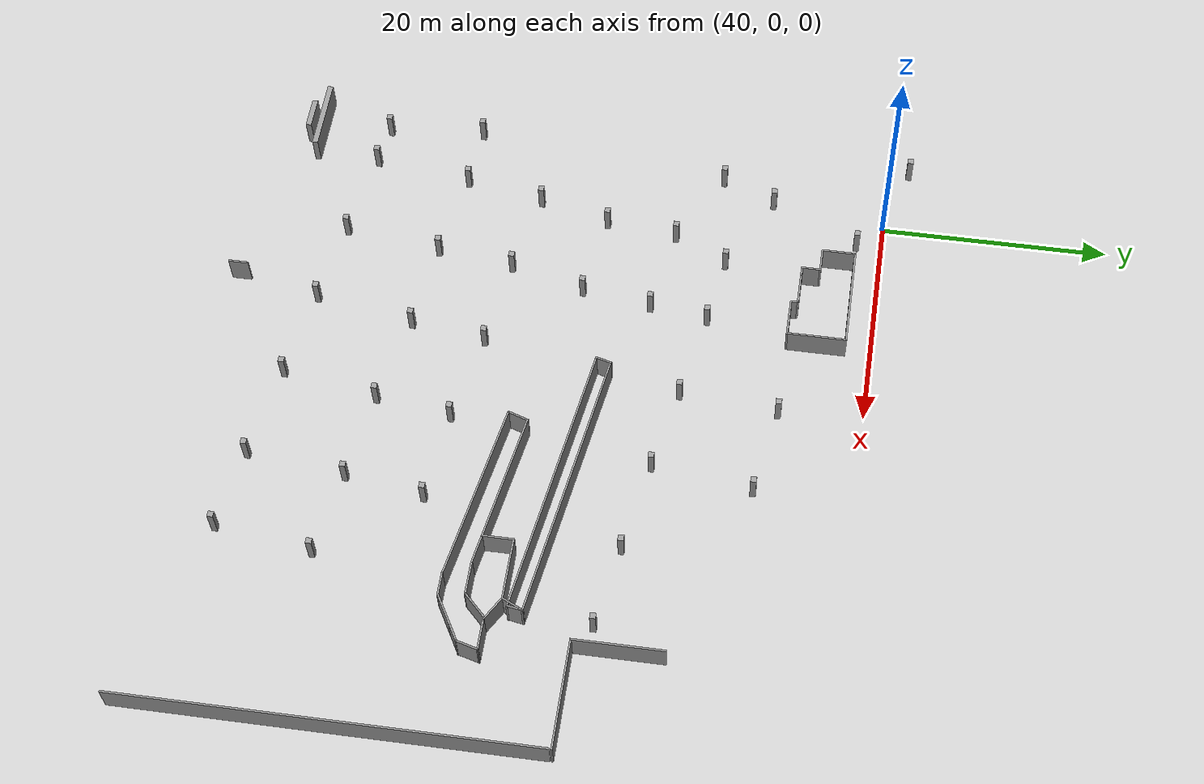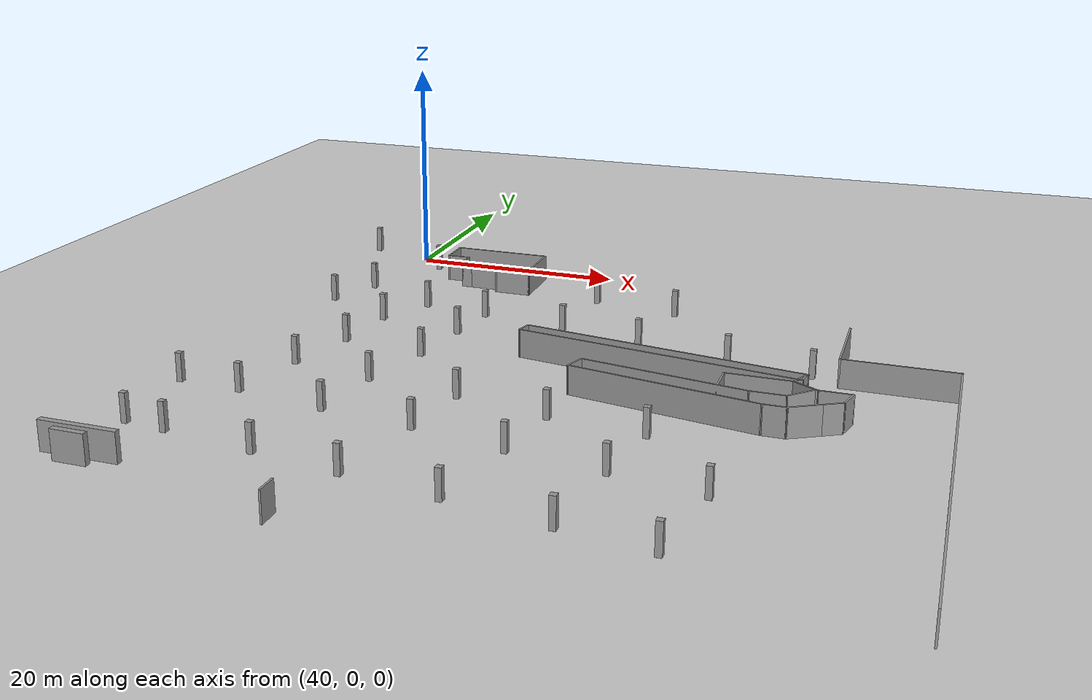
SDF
<sdf version="1.6">
 <world name="default">
  <model name="ground_plane">
   <static>1</static>
   <link name="link">
    <collision name="collision">
     <geometry><plane><normal>0 0 1</normal><size>100 100</size></plane></geometry>
     <surface>
      <contact><collide_bitmask>65535</collide_bitmask></contact>
      <friction><ode><mu>100</mu><mu2>50</mu2></ode></friction>
     </surface>
    </collision>
    <visual name="visual">
     <cast_shadows>0</cast_shadows>
     <geometry><plane><normal>0 0 1</normal><size>100 100</size></plane></geometry>
     <material>
      <script><uri>file://media/materials/scripts/gazebo.material</uri><name>Gazebo/Grey</name></script>
     </material>
    </visual>
   </link>
  </model>
  <model name="parking_area_big_2">
   <pose>0.028574 -0.058085 0 0 -0 0</pose>
   <link name="Wall_282">
    <collision name="Wall_282_Collision">
     <geometry><box><size>0.51 0.5 2.5</size></box></geometry>
     <pose>0 0 1.25 0 -0 0</pose>
    </collision>
    <visual name="Wall_282_Visual">
     <pose>0 0 1.25 0 -0 0</pose>
     <geometry><box><size>0.51 0.5 2.5</size></box></geometry>
     <material>
      <script><uri>file://media/materials/scripts/gazebo.material</uri><name>Gazebo/Grey</name></script>
      <ambient>1 1 1 1</ambient>
     </material>
     <meta><layer>0</layer></meta>
    </visual>
    <pose>42.8538 -24.4996 0 0 -0 0</pose>
   </link>
   <link name="Wall_284">
    <collision name="Wall_284_Collision">
     <geometry><box><size>0.51 0.5 2.5</size></box></geometry>
     <pose>0 0 1.25 0 -0 0</pose>
    </collision>
    <visual name="Wall_284_Visual">
     <pose>0 0 1.25 0 -0 0</pose>
     <geometry><box><size>0.51 0.5 2.5</size></box></geometry>
     <material>
      <script><uri>file://media/materials/scripts/gazebo.material</uri><name>Gazebo/Grey</name></script>
      <ambient>1 1 1 1</ambient>
     </material>
     <meta><layer>0</layer></meta>
    </visual>
    <pose>50.4723 -25.585 0 0 -0 0</pose>
   </link>
   <link name="Wall_286">
    <collision name="Wall_286_Collision">
     <geometry><box><size>0.51 0.5 2.5</size></box></geometry>
     <pose>0 0 1.25 0 -0 0</pose>
    </collision>
    <visual name="Wall_286_Visual">
     <pose>0 0 1.25 0 -0 0</pose>
     <geometry><box><size>0.51 0.5 2.5</size></box></geometry>
     <material>
      <script><uri>file://media/materials/scripts/gazebo.material</uri><name>Gazebo/Grey</name></script>
      <ambient>1 1 1 1</ambient>
     </material>
     <meta><layer>0</layer></meta>
    </visual>
    <pose>51.3512 -19.4611 0 0 -0 0</pose>
   </link>
   <link name="Wall_289">
    <collision name="Wall_289_Collision">
     <geometry><box><size>14.1352 0.15 2.5</size></box></geometry>
     <pose>0 0 1.25 0 -0 0</pose>
    </collision>
    <visual name="Wall_289_Visual">
     <pose>0 0 1.25 0 -0 0</pose>
     <geometry><box><size>14.1352 0.15 2.5</size></box></geometry>
     <material>
      <script><uri>file://media/materials/scripts/gazebo.material</uri><name>Gazebo/Grey</name></script>
      <ambient>1 1 1 1</ambient>
     </material>
     <meta><layer>0</layer></meta>
    </visual>
    <pose>72.3605 -29.0324 0 0 -0 -0.159836</pose>
   </link>
   <link name="Wall_290">
    <collision name="Wall_290_Collision">
     <geometry><box><size>3 0.15 2.5</size></box></geometry>
     <pose>0 0 1.25 0 -0 0</pose>
    </collision>
    <visual name="Wall_290_Visual">
     <pose>0 0 1.25 0 -0 0</pose>
     <geometry><box><size>3 0.15 2.5</size></box></geometry>
     <material>
      <script><uri>file://media/materials/scripts/gazebo.material</uri><name>Gazebo/Grey</name></script>
      <ambient>1 1 1 1</ambient>
     </material>
     <meta><layer>0</layer></meta>
    </visual>
    <pose>80.689 -30.1454 0 0 -0 0</pose>
   </link>
   <link name="Wall_291">
    <collision name="Wall_291_Collision">
     <geometry><box><size>2.75 0.15 2.5</size></box></geometry>
     <pose>0 0 1.25 0 -0 0</pose>
    </collision>
    <visual name="Wall_291_Visual">
     <pose>0 0 1.25 0 -0 0</pose>
     <geometry><box><size>2.75 0.15 2.5</size></box></geometry>
     <material>
      <script><uri>file://media/materials/scripts/gazebo.material</uri><name>Gazebo/Grey</name></script>
      <ambient>1 1 1 1</ambient>
     </material>
     <meta><layer>0</layer></meta>
    </visual>
    <pose>83.0333 -29.2261 0 0 -0 0.785398</pose>
   </link>
   <link name="Wall_292">
    <collision name="Wall_292_Collision">
     <geometry><box><size>3 0.15 2.5</size></box></geometry>
     <pose>0 0 1.25 0 -0 0</pose>
    </collision>
    <visual name="Wall_292_Visual">
     <pose>0 0 1.25 0 -0 0</pose>
     <geometry><box><size>3 0.15 2.5</size></box></geometry>
     <material>
      <script><uri>file://media/materials/scripts/gazebo.material</uri><name>Gazebo/Grey</name></script>
      <ambient>1 1 1 1</ambient>
     </material>
     <meta><layer>0</layer></meta>
    </visual>
    <pose>85.3775 -28.3069 0 0 -0 0</pose>
   </link>
   <link name="Wall_293">
    <collision name="Wall_293_Collision">
     <geometry><box><size>2 0.15 2.5</size></box></geometry>
     <pose>0 0 1.25 0 -0 0</pose>
    </collision>
    <visual name="Wall_293_Visual">
     <pose>0 0 1.25 0 -0 0</pose>
     <geometry><box><size>2 0.15 2.5</size></box></geometry>
     <material>
      <script><uri>file://media/materials/scripts/gazebo.material</uri><name>Gazebo/Grey</name></script>
      <ambient>1 1 1 1</ambient>
     </material>
     <meta><layer>0</layer></meta>
    </visual>
    <pose>86.5631 -29.2004 0 0 -0 -1.8326</pose>
   </link>
   <link name="Wall_294">
    <collision name="Wall_294_Collision">
     <geometry><box><size>1.75 0.15 2.5</size></box></geometry>
     <pose>0 0 1.25 0 -0 0</pose>
    </collision>
    <visual name="Wall_294_Visual">
     <pose>0 0 1.25 0 -0 0</pose>
     <geometry><box><size>1.75 0.15 2.5</size></box></geometry>
     <material>
      <script><uri>file://media/materials/scripts/gazebo.material</uri><name>Gazebo/Grey</name></script>
      <ambient>1 1 1 1</ambient>
     </material>
     <meta><layer>0</layer></meta>
    </visual>
    <pose>85.6309 -30.4938 0 0 -0 -2.61799</pose>
   </link>
   <link name="Wall_295">
    <collision name="Wall_295_Collision">
     <geometry><box><size>3 0.15 2.5</size></box></geometry>
     <pose>0 0 1.25 0 -0 0</pose>
    </collision>
    <visual name="Wall_295_Visual">
     <pose>0 0 1.25 0 -0 0</pose>
     <geometry><box><size>3 0.15 2.5</size></box></geometry>
     <material>
      <script><uri>file://media/materials/scripts/gazebo.material</uri><name>Gazebo/Grey</name></script>
      <ambient>1 1 1 1</ambient>
     </material>
     <meta><layer>0</layer></meta>
    </visual>
    <pose>83.7039 -31.6063 0 0 -0 -2.61799</pose>
   </link>
   <link name="Wall_296">
    <collision name="Wall_296_Collision">
     <geometry><box><size>2 0.15 2.5</size></box></geometry>
     <pose>0 0 1.25 0 -0 0</pose>
    </collision>
    <visual name="Wall_296_Visual">
     <pose>0 0 1.25 0 -0 0</pose>
     <geometry><box><size>2 0.15 2.5</size></box></geometry>
     <material>
      <script><uri>file://media/materials/scripts/gazebo.material</uri><name>Gazebo/Grey</name></script>
      <ambient>1 1 1 1</ambient>
     </material>
     <meta><layer>0</layer></meta>
    </visual>
    <pose>81.5449 -32.3188 0 0 -0 3.14159</pose>
   </link>
   <link name="Wall_297">
    <collision name="Wall_297_Collision">
     <geometry><box><size>16.1236 0.15 2.5</size></box></geometry>
     <pose>0 0 1.25 0 -0 0</pose>
    </collision>
    <visual name="Wall_297_Visual">
     <pose>0 0 1.25 0 -0 0</pose>
     <geometry><box><size>16.1236 0.15 2.5</size></box></geometry>
     <material>
      <script><uri>file://media/materials/scripts/gazebo.material</uri><name>Gazebo/Grey</name></script>
      <ambient>1 1 1 1</ambient>
     </material>
     <meta><layer>0</layer></meta>
    </visual>
    <pose>72.7462 -30.9794 0 0 -0 2.9731</pose>
   </link>
   <link name="Wall_298">
    <collision name="Wall_298_Collision">
     <geometry><box><size>1.96713 0.15 2.5</size></box></geometry>
     <pose>0 0 1.25 0 -0 0</pose>
    </collision>
    <visual name="Wall_298_Visual">
     <pose>0 0 1.25 0 -0 0</pose>
     <geometry><box><size>1.96713 0.15 2.5</size></box></geometry>
     <material>
      <script><uri>file://media/materials/scripts/gazebo.material</uri><name>Gazebo/Grey</name></script>
      <ambient>1 1 1 1</ambient>
     </material>
     <meta><layer>0</layer></meta>
    </visual>
    <pose>65.1648 -28.7798 0 0 -0 1.2433</pose>
   </link>
   <link name="Wall_300">
    <collision name="Wall_300_Collision">
     <geometry><box><size>5.5 0.15 2.5</size></box></geometry>
     <pose>0 0 1.25 0 -0 0</pose>
    </collision>
    <visual name="Wall_300_Visual">
     <pose>0 0 1.25 0 -0 0</pose>
     <geometry><box><size>5.5 0.15 2.5</size></box></geometry>
     <material>
      <script><uri>file://media/materials/scripts/gazebo.material</uri><name>Gazebo/Grey</name></script>
      <ambient>1 1 1 1</ambient>
     </material>
     <meta><layer>0</layer></meta>
    </visual>
    <pose>79.4586 -27.1389 0 0 -0 0</pose>
   </link>
   <link name="Wall_301">
    <collision name="Wall_301_Collision">
     <geometry><box><size>2.5 0.15 2.5</size></box></geometry>
     <pose>0 0 1.25 0 -0 0</pose>
    </collision>
    <visual name="Wall_301_Visual">
     <pose>0 0 1.25 0 -0 0</pose>
     <geometry><box><size>2.5 0.15 2.5</size></box></geometry>
     <material>
      <script><uri>file://media/materials/scripts/gazebo.material</uri><name>Gazebo/Grey</name></script>
      <ambient>1 1 1 1</ambient>
     </material>
     <meta><layer>0</layer></meta>
    </visual>
    <pose>83.1512 -27.7264 0 0 -0 -0.523599</pose>
   </link>
   <link name="Wall_303">
    <collision name="Wall_303_Collision">
     <geometry><box><size>2.75 0.15 2.5</size></box></geometry>
     <pose>0 0 1.25 0 -0 0</pose>
    </collision>
    <visual name="Wall_303_Visual">
     <pose>0 0 1.25 0 -0 0</pose>
     <geometry><box><size>2.75 0.15 2.5</size></box></geometry>
     <material>
      <script><uri>file://media/materials/scripts/gazebo.material</uri><name>Gazebo/Grey</name></script>
      <ambient>1 1 1 1</ambient>
     </material>
     <meta><layer>0</layer></meta>
    </visual>
    <pose>76.7836 -28.4389 0 0 -0 -1.5708</pose>
   </link>
   <link name="Wall_305">
    <collision name="Wall_305_Collision">
     <geometry><box><size>0.51 0.5 2.5</size></box></geometry>
     <pose>0 0 1.25 0 -0 0</pose>
    </collision>
    <visual name="Wall_305_Visual">
     <pose>0 0 1.25 0 -0 0</pose>
     <geometry><box><size>0.51 0.5 2.5</size></box></geometry>
     <material>
      <script><uri>file://media/materials/scripts/gazebo.material</uri><name>Gazebo/Grey</name></script>
      <ambient>1 1 1 1</ambient>
     </material>
     <meta><layer>0</layer></meta>
    </visual>
    <pose>64.8191 -34.7412 0 0 -0 0</pose>
   </link>
   <link name="Wall_307">
    <collision name="Wall_307_Collision">
     <geometry><box><size>0.51 0.5 2.5</size></box></geometry>
     <pose>0 0 1.25 0 -0 0</pose>
    </collision>
    <visual name="Wall_307_Visual">
     <pose>0 0 1.25 0 -0 0</pose>
     <geometry><box><size>0.51 0.5 2.5</size></box></geometry>
     <material>
      <script><uri>file://media/materials/scripts/gazebo.material</uri><name>Gazebo/Grey</name></script>
      <ambient>1 1 1 1</ambient>
     </material>
     <meta><layer>0</layer></meta>
    </visual>
    <pose>63.8385 -41.3857 0 0 -0 0</pose>
   </link>
   <link name="Wall_309">
    <collision name="Wall_309_Collision">
     <geometry><box><size>0.51 0.5 2.5</size></box></geometry>
     <pose>0 0 1.25 0 -0 0</pose>
    </collision>
    <visual name="Wall_309_Visual">
     <pose>0 0 1.25 0 -0 0</pose>
     <geometry><box><size>0.51 0.5 2.5</size></box></geometry>
     <material>
      <script><uri>file://media/materials/scripts/gazebo.material</uri><name>Gazebo/Grey</name></script>
      <ambient>1 1 1 1</ambient>
     </material>
     <meta><layer>0</layer></meta>
    </visual>
    <pose>71.7112 -42.4191 0 0 -0 0</pose>
   </link>
   <link name="Wall_311">
    <collision name="Wall_311_Collision">
     <geometry><box><size>0.51 0.5 2.5</size></box></geometry>
     <pose>0 0 1.25 0 -0 0</pose>
    </collision>
    <visual name="Wall_311_Visual">
     <pose>0 0 1.25 0 -0 0</pose>
     <geometry><box><size>0.51 0.5 2.5</size></box></geometry>
     <material>
      <script><uri>file://media/materials/scripts/gazebo.material</uri><name>Gazebo/Grey</name></script>
      <ambient>1 1 1 1</ambient>
     </material>
     <meta><layer>0</layer></meta>
    </visual>
    <pose>79.1368 -43.6035 0 0 -0 -1.5708</pose>
   </link>
   <link name="Wall_313">
    <collision name="Wall_313_Collision">
     <geometry><box><size>0.51 0.5 2.5</size></box></geometry>
     <pose>0 0 1.25 0 -0 0</pose>
    </collision>
    <visual name="Wall_313_Visual">
     <pose>0 0 1.25 0 -0 0</pose>
     <geometry><box><size>0.51 0.5 2.5</size></box></geometry>
     <material>
      <script><uri>file://media/materials/scripts/gazebo.material</uri><name>Gazebo/Grey</name></script>
      <ambient>1 1 1 1</ambient>
     </material>
     <meta><layer>0</layer></meta>
    </visual>
    <pose>77.8144 -52.1023 0 0 -0 0</pose>
   </link>
   <link name="Wall_315">
    <collision name="Wall_315_Collision">
     <geometry><box><size>0.51 0.5 2.5</size></box></geometry>
     <pose>0 0 1.25 0 -0 0</pose>
    </collision>
    <visual name="Wall_315_Visual">
     <pose>0 0 1.25 0 -0 0</pose>
     <geometry><box><size>0.51 0.5 2.5</size></box></geometry>
     <material>
      <script><uri>file://media/materials/scripts/gazebo.material</uri><name>Gazebo/Grey</name></script>
      <ambient>1 1 1 1</ambient>
     </material>
     <meta><layer>0</layer></meta>
    </visual>
    <pose>70.6561 -51.0772 0 0 -0 0</pose>
   </link>
   <link name="Wall_317">
    <collision name="Wall_317_Collision">
     <geometry><box><size>0.51 0.5 2.5</size></box></geometry>
     <pose>0 0 1.25 0 -0 0</pose>
    </collision>
    <visual name="Wall_317_Visual">
     <pose>0 0 1.25 0 -0 0</pose>
     <geometry><box><size>0.51 0.5 2.5</size></box></geometry>
     <material>
      <script><uri>file://media/materials/scripts/gazebo.material</uri><name>Gazebo/Grey</name></script>
      <ambient>1 1 1 1</ambient>
     </material>
     <meta><layer>0</layer></meta>
    </visual>
    <pose>62.2986 -49.8022 0 0 -0 -1.5708</pose>
   </link>
   <link name="Wall_319">
    <collision name="Wall_319_Collision">
     <geometry><box><size>0.51 0.5 2.5</size></box></geometry>
     <pose>0 0 1.25 0 -0 0</pose>
    </collision>
    <visual name="Wall_319_Visual">
     <pose>0 0 1.25 0 -0 0</pose>
     <geometry><box><size>0.51 0.5 2.5</size></box></geometry>
     <material>
      <script><uri>file://media/materials/scripts/gazebo.material</uri><name>Gazebo/Grey</name></script>
      <ambient>1 1 1 1</ambient>
     </material>
     <meta><layer>0</layer></meta>
    </visual>
    <pose>56.8275 -33.223 0 0 -0 0</pose>
   </link>
   <link name="Wall_321">
    <collision name="Wall_321_Collision">
     <geometry><box><size>0.51 0.5 2.5</size></box></geometry>
     <pose>0 0 1.25 0 -0 0</pose>
    </collision>
    <visual name="Wall_321_Visual">
     <pose>0 0 1.25 0 -0 0</pose>
     <geometry><box><size>0.51 0.5 2.5</size></box></geometry>
     <material>
      <script><uri>file://media/materials/scripts/gazebo.material</uri><name>Gazebo/Grey</name></script>
      <ambient>1 1 1 1</ambient>
     </material>
     <meta><layer>0</layer></meta>
    </visual>
    <pose>55.861 -39.851 0 0 -0 0</pose>
   </link>
   <link name="Wall_337">
    <collision name="Wall_337_Collision">
     <geometry><box><size>0.51 0.5 2.5</size></box></geometry>
     <pose>0 0 1.25 0 -0 0</pose>
    </collision>
    <visual name="Wall_337_Visual">
     <pose>0 0 1.25 0 -0 0</pose>
     <geometry><box><size>0.51 0.5 2.5</size></box></geometry>
     <material>
      <script><uri>file://media/materials/scripts/gazebo.material</uri><name>Gazebo/Grey</name></script>
      <ambient>1 1 1 1</ambient>
     </material>
     <meta><layer>0</layer></meta>
    </visual>
    <pose>48.7352 -32.1848 0 0 -0 0</pose>
   </link>
   <link name="Wall_4">
    <collision name="Wall_4_Collision">
     <geometry><box><size>7.75 0.15 2.5</size></box></geometry>
     <pose>0 0 1.25 0 -0 0</pose>
    </collision>
    <visual name="Wall_4_Visual">
     <pose>0 0 1.25 0 -0 0</pose>
     <geometry><box><size>7.75 0.15 2.5</size></box></geometry>
     <material>
      <script><uri>file://media/materials/scripts/gazebo.material</uri><name>Gazebo/Grey</name></script>
      <ambient>1 1 1 1</ambient>
     </material>
     <meta><layer>0</layer></meta>
    </visual>
    <pose>84.9591 -17.366 0 0 -0 -1.5708</pose>
   </link>
   <link name="Wall_45">
    <collision name="Wall_45_Collision">
     <geometry><box><size>0.51 0.5 2.5</size></box></geometry>
     <pose>0 0 1.25 0 -0 0</pose>
    </collision>
    <visual name="Wall_45_Visual">
     <pose>0 0 1.25 0 -0 0</pose>
     <geometry><box><size>0.51 0.5 2.5</size></box></geometry>
     <material>
      <script><uri>file://media/materials/scripts/gazebo.material</uri><name>Gazebo/Grey</name></script>
      <ambient>1 1 1 1</ambient>
     </material>
     <meta><layer>0</layer></meta>
    </visual>
    <pose>33.7273 1.95605 0 0 -0 3.14159</pose>
   </link>
   <link name="Wall_459">
    <collision name="Wall_459_Collision">
     <geometry><box><size>0.51 0.5 2.5</size></box></geometry>
     <pose>0 0 1.25 0 -0 0</pose>
    </collision>
    <visual name="Wall_459_Visual">
     <pose>0 0 1.25 0 -0 0</pose>
     <geometry><box><size>0.51 0.5 2.5</size></box></geometry>
     <material>
      <script><uri>file://media/materials/scripts/gazebo.material</uri><name>Gazebo/Grey</name></script>
      <ambient>1 1 1 1</ambient>
     </material>
     <meta><layer>0</layer></meta>
    </visual>
    <pose>34.3056 -37.3654 0 0 -0 0</pose>
   </link>
   <link name="Wall_461">
    <collision name="Wall_461_Collision">
     <geometry><box><size>0.51 0.5 2.5</size></box></geometry>
     <pose>0 0 1.25 0 -0 0</pose>
    </collision>
    <visual name="Wall_461_Visual">
     <pose>0 0 1.25 0 -0 0</pose>
     <geometry><box><size>0.51 0.5 2.5</size></box></geometry>
     <material>
      <script><uri>file://media/materials/scripts/gazebo.material</uri><name>Gazebo/Grey</name></script>
      <ambient>1 1 1 1</ambient>
     </material>
     <meta><layer>0</layer></meta>
    </visual>
    <pose>41.249 -30.7689 0 0 -0 0</pose>
   </link>
   <link name="Wall_463">
    <collision name="Wall_463_Collision">
     <geometry><box><size>0.51 0.5 2.5</size></box></geometry>
     <pose>0 0 1.25 0 -0 0</pose>
    </collision>
    <visual name="Wall_463_Visual">
     <pose>0 0 1.25 0 -0 0</pose>
     <geometry><box><size>0.51 0.5 2.5</size></box></geometry>
     <material>
      <script><uri>file://media/materials/scripts/gazebo.material</uri><name>Gazebo/Grey</name></script>
      <ambient>1 1 1 1</ambient>
     </material>
     <meta><layer>0</layer></meta>
    </visual>
    <pose>39.9353 -37.7139 0 0 -0 0</pose>
   </link>
   <link name="Wall_465">
    <collision name="Wall_465_Collision">
     <geometry><box><size>0.51 0.5 2.5</size></box></geometry>
     <pose>0 0 1.25 0 -0 0</pose>
    </collision>
    <visual name="Wall_465_Visual">
     <pose>0 0 1.25 0 -0 0</pose>
     <geometry><box><size>0.51 0.5 2.5</size></box></geometry>
     <material>
      <script><uri>file://media/materials/scripts/gazebo.material</uri><name>Gazebo/Grey</name></script>
      <ambient>1 1 1 1</ambient>
     </material>
     <meta><layer>0</layer></meta>
    </visual>
    <pose>47.8889 -38.9524 0 0 -0 0</pose>
   </link>
   <link name="Wall_467">
    <collision name="Wall_467_Collision">
     <geometry><box><size>0.51 0.5 2.5</size></box></geometry>
     <pose>0 0 1.25 0 -0 0</pose>
    </collision>
    <visual name="Wall_467_Visual">
     <pose>0 0 1.25 0 -0 0</pose>
     <geometry><box><size>0.51 0.5 2.5</size></box></geometry>
     <material>
      <script><uri>file://media/materials/scripts/gazebo.material</uri><name>Gazebo/Grey</name></script>
      <ambient>1 1 1 1</ambient>
     </material>
     <meta><layer>0</layer></meta>
    </visual>
    <pose>72.8016 -35.5121 0 0 -0 0</pose>
   </link>
   <link name="Wall_469">
    <collision name="Wall_469_Collision">
     <geometry><box><size>0.51 0.5 2.5</size></box></geometry>
     <pose>0 0 1.25 0 -0 0</pose>
    </collision>
    <visual name="Wall_469_Visual">
     <pose>0 0 1.25 0 -0 0</pose>
     <geometry><box><size>0.51 0.5 2.5</size></box></geometry>
     <material>
      <script><uri>file://media/materials/scripts/gazebo.material</uri><name>Gazebo/Grey</name></script>
      <ambient>1 1 1 1</ambient>
     </material>
     <meta><layer>0</layer></meta>
    </visual>
    <pose>54.2297 -48.6141 0 0 -0 0</pose>
   </link>
   <link name="Wall_47">
    <collision name="Wall_47_Collision">
     <geometry><box><size>0.51 0.5 2.5</size></box></geometry>
     <pose>0 0 1.25 0 -0 0</pose>
    </collision>
    <visual name="Wall_47_Visual">
     <pose>0 0 1.25 0 -0 0</pose>
     <geometry><box><size>0.51 0.5 2.5</size></box></geometry>
     <material>
      <script><uri>file://media/materials/scripts/gazebo.material</uri><name>Gazebo/Grey</name></script>
      <ambient>1 1 1 1</ambient>
     </material>
     <meta><layer>0</layer></meta>
    </visual>
    <pose>42.3753 -2.13027 0 0 -0 0</pose>
   </link>
   <link name="Wall_471">
    <collision name="Wall_471_Collision">
     <geometry><box><size>0.51 0.5 2.5</size></box></geometry>
     <pose>0 0 1.25 0 -0 0</pose>
    </collision>
    <visual name="Wall_471_Visual">
     <pose>0 0 1.25 0 -0 0</pose>
     <geometry><box><size>0.51 0.5 2.5</size></box></geometry>
     <material>
      <script><uri>file://media/materials/scripts/gazebo.material</uri><name>Gazebo/Grey</name></script>
      <ambient>1 1 1 1</ambient>
     </material>
     <meta><layer>0</layer></meta>
    </visual>
    <pose>46.7106 -47.5138 0 0 -0 0</pose>
   </link>
   <link name="Wall_474">
    <collision name="Wall_474_Collision">
     <geometry><box><size>6.6 0.5 2.5</size></box></geometry>
     <pose>0 0 1.25 0 -0 0</pose>
    </collision>
    <visual name="Wall_474_Visual">
     <pose>0 0 1.25 0 -0 0</pose>
     <geometry><box><size>6.6 0.5 2.5</size></box></geometry>
     <material>
      <script><uri>file://media/materials/scripts/gazebo.material</uri><name>Gazebo/Grey</name></script>
      <ambient>1 1 1 1</ambient>
     </material>
     <meta><layer>0</layer></meta>
    </visual>
    <pose>35.5254 -52.0901 0 0 -0 0</pose>
   </link>
   <link name="Wall_476">
    <collision name="Wall_476_Collision">
     <geometry><box><size>2.85 0.5 2.5</size></box></geometry>
     <pose>0 0 1.25 0 -0 0</pose>
    </collision>
    <visual name="Wall_476_Visual">
     <pose>0 0 1.25 0 -0 0</pose>
     <geometry><box><size>2.85 0.5 2.5</size></box></geometry>
     <material>
      <script><uri>file://media/materials/scripts/gazebo.material</uri><name>Gazebo/Grey</name></script>
      <ambient>1 1 1 1</ambient>
     </material>
     <meta><layer>0</layer></meta>
    </visual>
    <pose>35.4973 -53.1201 0 0 -0 0</pose>
   </link>
   <link name="Wall_478">
    <collision name="Wall_478_Collision">
     <geometry><box><size>0.51 0.5 2.5</size></box></geometry>
     <pose>0 0 1.25 0 -0 0</pose>
    </collision>
    <visual name="Wall_478_Visual">
     <pose>0 0 1.25 0 -0 0</pose>
     <geometry><box><size>0.51 0.5 2.5</size></box></geometry>
     <material>
      <script><uri>file://media/materials/scripts/gazebo.material</uri><name>Gazebo/Grey</name></script>
      <ambient>1 1 1 1</ambient>
     </material>
     <meta><layer>0</layer></meta>
    </visual>
    <pose>38.6813 -46.3683 0 0 -0 0</pose>
   </link>
   <link name="Wall_480">
    <collision name="Wall_480_Collision">
     <geometry><box><size>0.51 0.5 2.5</size></box></geometry>
     <pose>0 0 1.25 0 -0 0</pose>
    </collision>
    <visual name="Wall_480_Visual">
     <pose>0 0 1.25 0 -0 0</pose>
     <geometry><box><size>0.51 0.5 2.5</size></box></geometry>
     <material>
      <script><uri>file://media/materials/scripts/gazebo.material</uri><name>Gazebo/Grey</name></script>
      <ambient>1 1 1 1</ambient>
     </material>
     <meta><layer>0</layer></meta>
    </visual>
    <pose>34.9975 -45.9138 0 0 -0 0</pose>
   </link>
   <link name="Wall_49">
    <collision name="Wall_49_Collision">
     <geometry><box><size>9.25 0.15 2.5</size></box></geometry>
     <pose>0 0 1.25 0 -0 0</pose>
    </collision>
    <visual name="Wall_49_Visual">
     <pose>0 0 1.25 0 -0 0</pose>
     <geometry><box><size>9.25 0.15 2.5</size></box></geometry>
     <material>
      <script><uri>file://media/materials/scripts/gazebo.material</uri><name>Gazebo/Grey</name></script>
      <ambient>1 1 1 1</ambient>
     </material>
     <meta><layer>0</layer></meta>
    </visual>
    <pose>49.2713 -2.14104 0 0 -0 0</pose>
   </link>
   <link name="Wall_5">
    <collision name="Wall_5_Collision">
     <geometry><box><size>9.5 0.15 2.5</size></box></geometry>
     <pose>0 0 1.25 0 -0 0</pose>
    </collision>
    <visual name="Wall_5_Visual">
     <pose>0 0 1.25 0 -0 0</pose>
     <geometry><box><size>9.5 0.15 2.5</size></box></geometry>
     <material>
      <script><uri>file://media/materials/scripts/gazebo.material</uri><name>Gazebo/Grey</name></script>
      <ambient>1 1 1 1</ambient>
     </material>
     <meta><layer>0</layer></meta>
    </visual>
    <pose>89.6341 -21.166 0 0 -0 0</pose>
   </link>
   <link name="Wall_50">
    <collision name="Wall_50_Collision">
     <geometry><box><size>5.25 0.15 2.5</size></box></geometry>
     <pose>0 0 1.25 0 -0 0</pose>
    </collision>
    <visual name="Wall_50_Visual">
     <pose>0 0 1.25 0 -0 0</pose>
     <geometry><box><size>5.25 0.15 2.5</size></box></geometry>
     <material>
      <script><uri>file://media/materials/scripts/gazebo.material</uri><name>Gazebo/Grey</name></script>
      <ambient>1 1 1 1</ambient>
     </material>
     <meta><layer>0</layer></meta>
    </visual>
    <pose>53.8213 -4.69104 0 0 -0 -1.5708</pose>
   </link>
   <link name="Wall_51">
    <collision name="Wall_51_Collision">
     <geometry><box><size>3.5 0.15 2.5</size></box></geometry>
     <pose>0 0 1.25 0 -0 0</pose>
    </collision>
    <visual name="Wall_51_Visual">
     <pose>0 0 1.25 0 -0 0</pose>
     <geometry><box><size>3.5 0.15 2.5</size></box></geometry>
     <material>
      <script><uri>file://media/materials/scripts/gazebo.material</uri><name>Gazebo/Grey</name></script>
      <ambient>1 1 1 1</ambient>
     </material>
     <meta><layer>0</layer></meta>
    </visual>
    <pose>52.1463 -7.24104 0 0 -0 3.14159</pose>
   </link>
   <link name="Wall_52">
    <collision name="Wall_52_Collision">
     <geometry><box><size>0.75 0.15 2.5</size></box></geometry>
     <pose>0 0 1.25 0 -0 0</pose>
    </collision>
    <visual name="Wall_52_Visual">
     <pose>0 0 1.25 0 -0 0</pose>
     <geometry><box><size>0.75 0.15 2.5</size></box></geometry>
     <material>
      <script><uri>file://media/materials/scripts/gazebo.material</uri><name>Gazebo/Grey</name></script>
      <ambient>1 1 1 1</ambient>
     </material>
     <meta><layer>0</layer></meta>
    </visual>
    <pose>50.4713 -6.94104 0 0 -0 1.5708</pose>
   </link>
   <link name="Wall_522">
    <collision name="Wall_522_Collision">
     <geometry><box><size>1.75 0.15 2.5</size></box></geometry>
     <pose>0 0 1.25 0 -0 0</pose>
    </collision>
    <visual name="Wall_522_Visual">
     <pose>0 0 1.25 0 -0 0</pose>
     <geometry><box><size>1.75 0.15 2.5</size></box></geometry>
     <material>
      <script><uri>file://media/materials/scripts/gazebo.material</uri><name>Gazebo/Grey</name></script>
      <ambient>1 1 1 1</ambient>
     </material>
     <meta><layer>0</layer></meta>
    </visual>
    <pose>52.8066 -55.8502 0 0 -0 -1.5708</pose>
   </link>
   <link name="Wall_524">
    <collision name="Wall_524_Collision">
     <geometry><box><size>24.4971 0.15 2.5</size></box></geometry>
     <pose>0 0 1.25 0 -0 0</pose>
    </collision>
    <visual name="Wall_524_Visual">
     <pose>0 0 1.25 0 -0 0</pose>
     <geometry><box><size>24.4971 0.15 2.5</size></box></geometry>
     <material>
      <script><uri>file://media/materials/scripts/gazebo.material</uri><name>Gazebo/Grey</name></script>
      <ambient>1 1 1 1</ambient>
     </material>
     <meta><layer>0</layer></meta>
    </visual>
    <pose>70.962 -23.6139 0 0 -0 -0.14524</pose>
   </link>
   <link name="Wall_525">
    <collision name="Wall_525_Collision">
     <geometry><box><size>1.37902 0.15 2.5</size></box></geometry>
     <pose>0 0 1.25 0 -0 0</pose>
    </collision>
    <visual name="Wall_525_Visual">
     <pose>0 0 1.25 0 -0 0</pose>
     <geometry><box><size>1.37902 0.15 2.5</size></box></geometry>
     <material>
      <script><uri>file://media/materials/scripts/gazebo.material</uri><name>Gazebo/Grey</name></script>
      <ambient>1 1 1 1</ambient>
     </material>
     <meta><layer>0</layer></meta>
    </visual>
    <pose>82.8651 -25.9812 0 0 -0 -1.74295</pose>
   </link>
   <link name="Wall_526">
    <collision name="Wall_526_Collision">
     <geometry><box><size>24.6616 0.15 2.5</size></box></geometry>
     <pose>0 0 1.25 0 -0 0</pose>
    </collision>
    <visual name="Wall_526_Visual">
     <pose>0 0 1.25 0 -0 0</pose>
     <geometry><box><size>24.6616 0.15 2.5</size></box></geometry>
     <material>
      <script><uri>file://media/materials/scripts/gazebo.material</uri><name>Gazebo/Grey</name></script>
      <ambient>1 1 1 1</ambient>
     </material>
     <meta><layer>0</layer></meta>
    </visual>
    <pose>70.6318 -24.8952 0 0 -0 2.99702</pose>
   </link>
   <link name="Wall_527">
    <collision name="Wall_527_Collision">
     <geometry><box><size>1.5 0.15 2.5</size></box></geometry>
     <pose>0 0 1.25 0 -0 0</pose>
    </collision>
    <visual name="Wall_527_Visual">
     <pose>0 0 1.25 0 -0 0</pose>
     <geometry><box><size>1.5 0.15 2.5</size></box></geometry>
     <material>
      <script><uri>file://media/materials/scripts/gazebo.material</uri><name>Gazebo/Grey</name></script>
      <ambient>1 1 1 1</ambient>
     </material>
     <meta><layer>0</layer></meta>
    </visual>
    <pose>58.6786 -22.4775 0 0 -0 1.309</pose>
   </link>
   <link name="Wall_529">
    <collision name="Wall_529_Collision">
     <geometry><box><size>2.10158 0.15 2.5</size></box></geometry>
     <pose>0 0 1.25 0 -0 0</pose>
    </collision>
    <visual name="Wall_529_Visual">
     <pose>0 0 1.25 0 -0 0</pose>
     <geometry><box><size>2.10158 0.15 2.5</size></box></geometry>
     <material>
      <script><uri>file://media/materials/scripts/gazebo.material</uri><name>Gazebo/Grey</name></script>
      <ambient>1 1 1 1</ambient>
     </material>
     <meta><layer>0</layer></meta>
    </visual>
    <pose>82.552 -26.2573 0 0 -0 -2.01389</pose>
   </link>
   <link name="Wall_53">
    <collision name="Wall_53_Collision">
     <geometry><box><size>3 0.15 2.5</size></box></geometry>
     <pose>0 0 1.25 0 -0 0</pose>
    </collision>
    <visual name="Wall_53_Visual">
     <pose>0 0 1.25 0 -0 0</pose>
     <geometry><box><size>3 0.15 2.5</size></box></geometry>
     <material>
      <script><uri>file://media/materials/scripts/gazebo.material</uri><name>Gazebo/Grey</name></script>
      <ambient>1 1 1 1</ambient>
     </material>
     <meta><layer>0</layer></meta>
    </visual>
    <pose>49.0463 -6.64103 0 0 -0 3.14159</pose>
   </link>
   <link name="Wall_54">
    <collision name="Wall_54_Collision">
     <geometry><box><size>1 0.15 2.5</size></box></geometry>
     <pose>0 0 1.25 0 -0 0</pose>
    </collision>
    <visual name="Wall_54_Visual">
     <pose>0 0 1.25 0 -0 0</pose>
     <geometry><box><size>1 0.15 2.5</size></box></geometry>
     <material>
      <script><uri>file://media/materials/scripts/gazebo.material</uri><name>Gazebo/Grey</name></script>
      <ambient>1 1 1 1</ambient>
     </material>
     <meta><layer>0</layer></meta>
    </visual>
    <pose>47.1963 -6.64103 0 0 -0 3.14159</pose>
   </link>
   <link name="Wall_55">
    <collision name="Wall_55_Collision">
     <geometry><box><size>1.75 0.15 2.5</size></box></geometry>
     <pose>0 0 1.25 0 -0 0</pose>
    </collision>
    <visual name="Wall_55_Visual">
     <pose>0 0 1.25 0 -0 0</pose>
     <geometry><box><size>1.75 0.15 2.5</size></box></geometry>
     <material>
      <script><uri>file://media/materials/scripts/gazebo.material</uri><name>Gazebo/Grey</name></script>
      <ambient>1 1 1 1</ambient>
     </material>
     <meta><layer>0</layer></meta>
    </visual>
    <pose>46.7713 -5.84103 0 0 -0 1.5708</pose>
   </link>
   <link name="Wall_56">
    <collision name="Wall_56_Collision">
     <geometry><box><size>2.25 0.15 2.5</size></box></geometry>
     <pose>0 0 1.25 0 -0 0</pose>
    </collision>
    <visual name="Wall_56_Visual">
     <pose>0 0 1.25 0 -0 0</pose>
     <geometry><box><size>2.25 0.15 2.5</size></box></geometry>
     <material>
      <script><uri>file://media/materials/scripts/gazebo.material</uri><name>Gazebo/Grey</name></script>
      <ambient>1 1 1 1</ambient>
     </material>
     <meta><layer>0</layer></meta>
    </visual>
    <pose>45.7213 -5.04103 0 0 -0 3.14159</pose>
   </link>
   <link name="Wall_57">
    <collision name="Wall_57_Collision">
     <geometry><box><size>3.03007 0.15 2.5</size></box></geometry>
     <pose>0 0 1.25 0 -0 0</pose>
    </collision>
    <visual name="Wall_57_Visual">
     <pose>0 0 1.25 0 -0 0</pose>
     <geometry><box><size>3.03007 0.15 2.5</size></box></geometry>
     <material>
      <script><uri>file://media/materials/scripts/gazebo.material</uri><name>Gazebo/Grey</name></script>
      <ambient>1 1 1 1</ambient>
     </material>
     <meta><layer>0</layer></meta>
    </visual>
    <pose>44.6713 -3.60103 0 0 -0 1.5708</pose>
   </link>
   <link name="Wall_6">
    <collision name="Wall_6_Collision">
     <geometry><box><size>35.52 0.15 2.5</size></box></geometry>
     <pose>0 0 1.25 0 -0 0</pose>
    </collision>
    <visual name="Wall_6_Visual">
     <pose>0 0 1.25 0 -0 0</pose>
     <geometry><box><size>35.52 0.15 2.5</size></box></geometry>
     <material>
      <script><uri>file://media/materials/scripts/gazebo.material</uri><name>Gazebo/Grey</name></script>
      <ambient>1 1 1 1</ambient>
     </material>
     <meta><layer>0</layer></meta>
    </visual>
    <pose>94.3091 -39.0999 0 0 -0 -1.5708</pose>
   </link>
   <link name="Wall_60">
    <collision name="Wall_60_Collision">
     <geometry><box><size>0.51 0.5 2.5</size></box></geometry>
     <pose>0 0 1.25 0 -0 0</pose>
    </collision>
    <visual name="Wall_60_Visual">
     <pose>0 0 1.25 0 -0 0</pose>
     <geometry><box><size>0.51 0.5 2.5</size></box></geometry>
     <material>
      <script><uri>file://media/materials/scripts/gazebo.material</uri><name>Gazebo/Grey</name></script>
      <ambient>1 1 1 1</ambient>
     </material>
     <meta><layer>0</layer></meta>
    </visual>
    <pose>60.7814 -7.19568 0 0 -0 3.14159</pose>
   </link>
   <link name="Wall_62">
    <collision name="Wall_62_Collision">
     <geometry><box><size>0.51 0.5 2.5</size></box></geometry>
     <pose>0 0 1.25 0 -0 0</pose>
    </collision>
    <visual name="Wall_62_Visual">
     <pose>0 0 1.25 0 -0 0</pose>
     <geometry><box><size>0.51 0.5 2.5</size></box></geometry>
     <material>
      <script><uri>file://media/materials/scripts/gazebo.material</uri><name>Gazebo/Grey</name></script>
      <ambient>1 1 1 1</ambient>
     </material>
     <meta><layer>0</layer></meta>
    </visual>
    <pose>68.6024 -8.45786 0 0 -0 0</pose>
   </link>
   <link name="Wall_64">
    <collision name="Wall_64_Collision">
     <geometry><box><size>0.51 0.5 2.5</size></box></geometry>
     <pose>0 0 1.25 0 -0 0</pose>
    </collision>
    <visual name="Wall_64_Visual">
     <pose>0 0 1.25 0 -0 0</pose>
     <geometry><box><size>0.51 0.5 2.5</size></box></geometry>
     <material>
      <script><uri>file://media/materials/scripts/gazebo.material</uri><name>Gazebo/Grey</name></script>
      <ambient>1 1 1 1</ambient>
     </material>
     <meta><layer>0</layer></meta>
    </visual>
    <pose>82.7033 -19.7321 0 0 -0 0</pose>
   </link>
   <link name="Wall_66">
    <collision name="Wall_66_Collision">
     <geometry><box><size>0.51 0.5 2.5</size></box></geometry>
     <pose>0 0 1.25 0 -0 0</pose>
    </collision>
    <visual name="Wall_66_Visual">
     <pose>0 0 1.25 0 -0 0</pose>
     <geometry><box><size>0.51 0.5 2.5</size></box></geometry>
     <material>
      <script><uri>file://media/materials/scripts/gazebo.material</uri><name>Gazebo/Grey</name></script>
      <ambient>1 1 1 1</ambient>
     </material>
     <meta><layer>0</layer></meta>
    </visual>
    <pose>75.4663 -18.5332 0 0 -0 0</pose>
   </link>
   <link name="Wall_68">
    <collision name="Wall_68_Collision">
     <geometry><box><size>0.51 0.5 2.5</size></box></geometry>
     <pose>0 0 1.25 0 -0 0</pose>
    </collision>
    <visual name="Wall_68_Visual">
     <pose>0 0 1.25 0 -0 0</pose>
     <geometry><box><size>0.51 0.5 2.5</size></box></geometry>
     <material>
      <script><uri>file://media/materials/scripts/gazebo.material</uri><name>Gazebo/Grey</name></script>
      <ambient>1 1 1 1</ambient>
     </material>
     <meta><layer>0</layer></meta>
    </visual>
    <pose>67.3938 -17.1757 0 0 -0 0</pose>
   </link>
   <link name="Wall_70">
    <collision name="Wall_70_Collision">
     <geometry><box><size>0.51 0.5 2.5</size></box></geometry>
     <pose>0 0 1.25 0 -0 0</pose>
    </collision>
    <visual name="Wall_70_Visual">
     <pose>0 0 1.25 0 -0 0</pose>
     <geometry><box><size>0.51 0.5 2.5</size></box></geometry>
     <material>
      <script><uri>file://media/materials/scripts/gazebo.material</uri><name>Gazebo/Grey</name></script>
      <ambient>1 1 1 1</ambient>
     </material>
     <meta><layer>0</layer></meta>
    </visual>
    <pose>60.0108 -15.7538 0 0 -0 0</pose>
   </link>
   <link name="Wall_72">
    <collision name="Wall_72_Collision">
     <geometry><box><size>0.51 0.5 2.5</size></box></geometry>
     <pose>0 0 1.25 0 -0 0</pose>
    </collision>
    <visual name="Wall_72_Visual">
     <pose>0 0 1.25 0 -0 0</pose>
     <geometry><box><size>0.51 0.5 2.5</size></box></geometry>
     <material>
      <script><uri>file://media/materials/scripts/gazebo.material</uri><name>Gazebo/Grey</name></script>
      <ambient>1 1 1 1</ambient>
     </material>
     <meta><layer>0</layer></meta>
    </visual>
    <pose>52.0768 -14.3672 0 0 -0 0</pose>
   </link>
   <link name="Wall_74">
    <collision name="Wall_74_Collision">
     <geometry><box><size>0.51 0.5 2.5</size></box></geometry>
     <pose>0 0 1.25 0 -0 0</pose>
    </collision>
    <visual name="Wall_74_Visual">
     <pose>0 0 1.25 0 -0 0</pose>
     <geometry><box><size>0.51 0.5 2.5</size></box></geometry>
     <material>
      <script><uri>file://media/materials/scripts/gazebo.material</uri><name>Gazebo/Grey</name></script>
      <ambient>1 1 1 1</ambient>
     </material>
     <meta><layer>0</layer></meta>
    </visual>
    <pose>45.9217 -13.4845 0 0 -0 0</pose>
   </link>
   <link name="Wall_76">
    <collision name="Wall_76_Collision">
     <geometry><box><size>0.51 0.5 2.5</size></box></geometry>
     <pose>0 0 1.25 0 -0 0</pose>
    </collision>
    <visual name="Wall_76_Visual">
     <pose>0 0 1.25 0 -0 0</pose>
     <geometry><box><size>0.51 0.5 2.5</size></box></geometry>
     <material>
      <script><uri>file://media/materials/scripts/gazebo.material</uri><name>Gazebo/Grey</name></script>
      <ambient>1 1 1 1</ambient>
     </material>
     <meta><layer>0</layer></meta>
    </visual>
    <pose>38.7144 -9.9207 0 0 -0 0</pose>
   </link>
   <link name="Wall_89">
    <collision name="Wall_89_Collision">
     <geometry><box><size>0.51 0.5 2.5</size></box></geometry>
     <pose>0 0 1.25 0 -0 0</pose>
    </collision>
    <visual name="Wall_89_Visual">
     <pose>0 0 1.25 0 -0 0</pose>
     <geometry><box><size>0.51 0.5 2.5</size></box></geometry>
     <material>
      <script><uri>file://media/materials/scripts/gazebo.material</uri><name>Gazebo/Grey</name></script>
      <ambient>1 1 1 1</ambient>
     </material>
     <meta><layer>0</layer></meta>
    </visual>
    <pose>43.5285 -18.2107 0 0 -0 0</pose>
   </link>
   <link name="Wall_91">
    <collision name="Wall_91_Collision">
     <geometry><box><size>0.51 0.5 2.5</size></box></geometry>
     <pose>0 0 1.25 0 -0 0</pose>
    </collision>
    <visual name="Wall_91_Visual">
     <pose>0 0 1.25 0 -0 0</pose>
     <geometry><box><size>0.51 0.5 2.5</size></box></geometry>
     <material>
      <script><uri>file://media/materials/scripts/gazebo.material</uri><name>Gazebo/Grey</name></script>
      <ambient>1 1 1 1</ambient>
     </material>
     <meta><layer>0</layer></meta>
    </visual>
    <pose>36.7404 -14.654 0 0 -0 0</pose>
   </link>
   <static>1</static>
  </model>
 </world>
</sdf>
